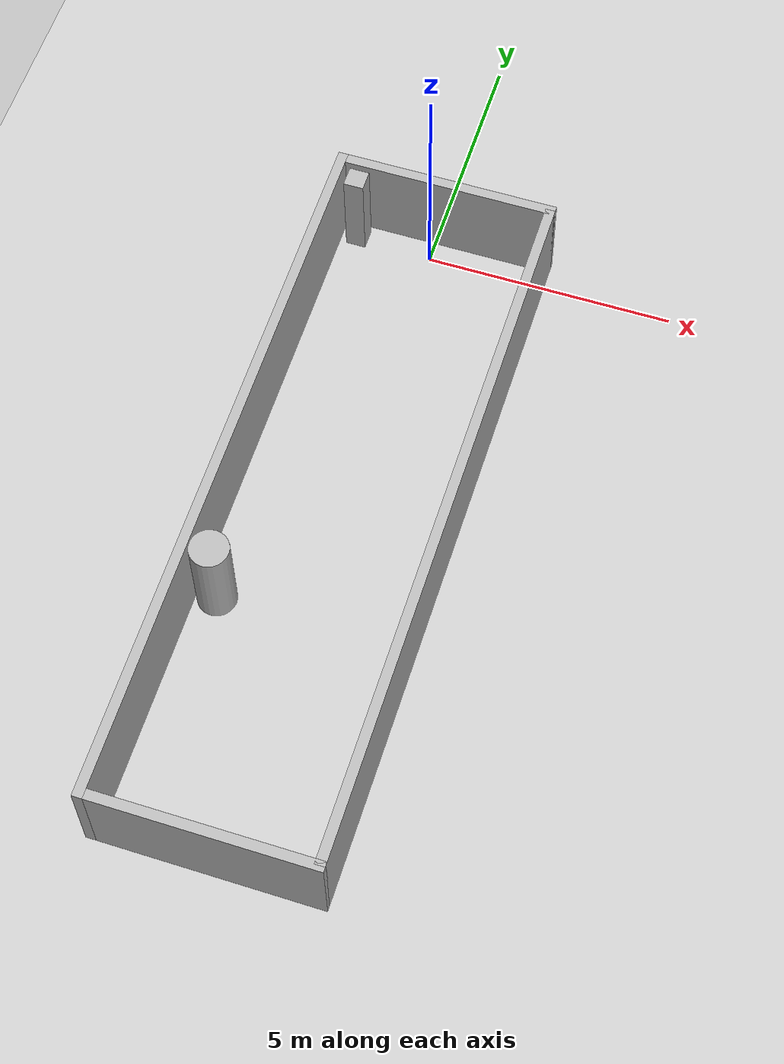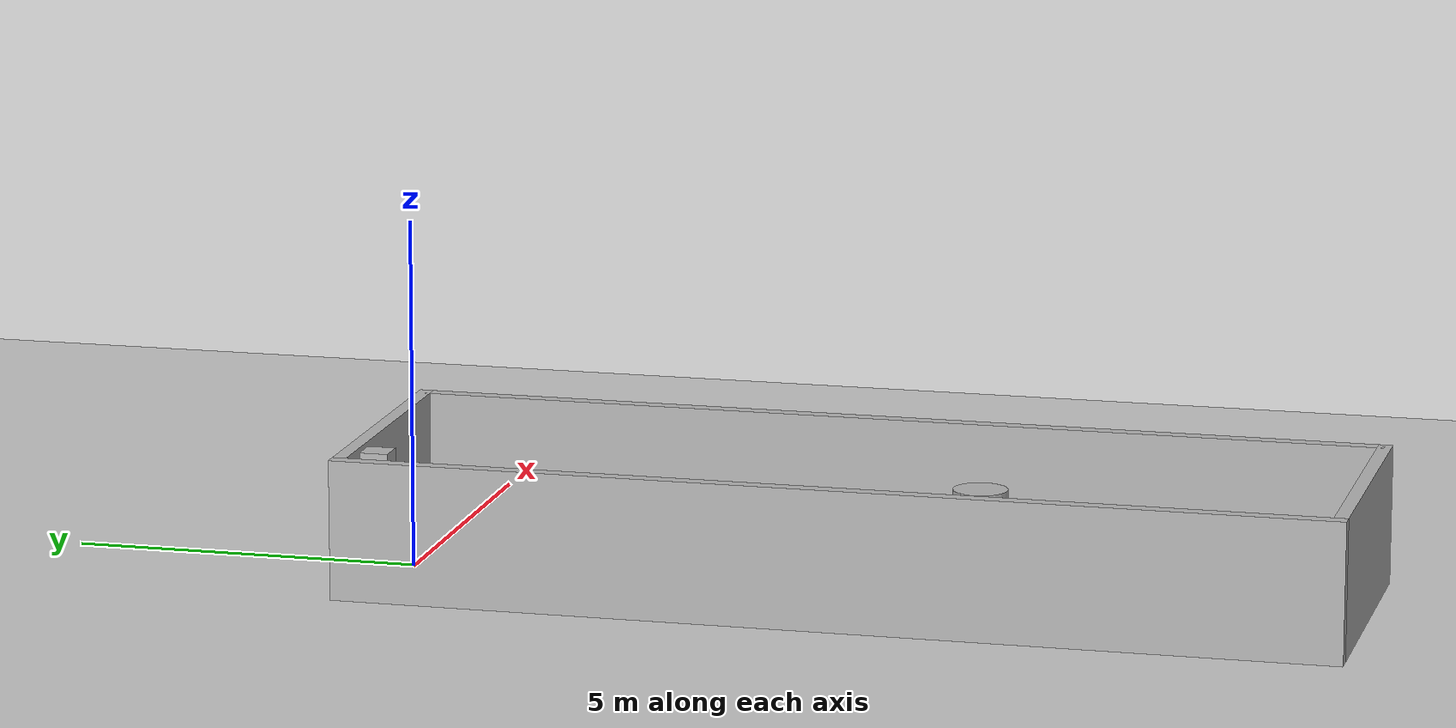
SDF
<sdf version="1.4">
 <world name="narrow_passage">
  <physics type="ode">
   <gravity>0 0 -9.81</gravity>
   <ode>
    <solver><type>quick</type><iters>20</iters><sor>1.0</sor></solver>
    <constraints>
     <cfm>0.0</cfm>
     <erp>0.2</erp>
     <contact_max_correcting_vel>100.0</contact_max_correcting_vel>
     <contact_surface_layer>0.0</contact_surface_layer>
    </constraints>
   </ode>
   <real_time_update_rate>1000</real_time_update_rate>
   <max_step_size>0.001</max_step_size>
  </physics>
  <include><uri>model://sun</uri></include>
  <include><uri>model://ground_plane</uri></include>
  <model name="wall_1_model">
   <pose>-2 -6.5 1 0 0 0</pose>
   <static>true</static>
   <link name="wall_1_body">
    <inertial>
     <mass>1.0</mass>
     <inertia><ixx>1.0</ixx><ixy>0.0</ixy><ixz>0.0</ixz><iyy>1.0</iyy><iyz>0.0</iyz><izz>1.0</izz></inertia>
    </inertial>
    <collision name="collision"><geometry><box><size>0.2 14.2 2</size></box></geometry></collision>
    <visual name="visual"><geometry><box><size>0.2 14.2 2</size></box></geometry></visual>
   </link>
  </model>
  <model name="wall_2_model">
   <pose>2.3 -6.5 1 0 0 0</pose>
   <static>true</static>
   <link name="wall_2_body">
    <inertial>
     <mass>1.0</mass>
     <inertia><ixx>1.0</ixx><ixy>0.0</ixy><ixz>0.0</ixz><iyy>1.0</iyy><iyz>0.0</iyz><izz>1.0</izz></inertia>
    </inertial>
    <collision name="collision"><geometry><box><size>0.2 14 2</size></box></geometry></collision>
    <visual name="visual"><geometry><box><size>0.2 14 2</size></box></geometry></visual>
   </link>
  </model>
  <model name="wall_3_model">
   <pose>0.25 0.5 1 0 0 0</pose>
   <static>true</static>
   <link name="wall_3_body">
    <inertial>
     <mass>1.0</mass>
     <inertia><ixx>1.0</ixx><ixy>0.0</ixy><ixz>0.0</ixz><iyy>1.0</iyy><iyz>0.0</iyz><izz>1.0</izz></inertia>
    </inertial>
    <collision name="collision"><geometry><box><size>4.3 0.2 2</size></box></geometry></collision>
    <visual name="visual"><geometry><box><size>4.3 0.2 2</size></box></geometry></visual>
   </link>
  </model>
  <model name="wall_4_model">
   <pose>0.25 -13.5 1 0 0 0</pose>
   <static>true</static>
   <link name="wall_4_body">
    <inertial>
     <mass>1.0</mass>
     <inertia><ixx>1.0</ixx><ixy>0.0</ixy><ixz>0.0</ixz><iyy>1.0</iyy><iyz>0.0</iyz><izz>1.0</izz></inertia>
    </inertial>
    <collision name="collision"><geometry><box><size>4.3 0.2 2</size></box></geometry></collision>
    <visual name="visual"><geometry><box><size>4.3 0.2 2</size></box></geometry></visual>
   </link>
  </model>
  <model name="box">
   <pose>-1.55 0.05 1.05 0 0 0</pose>
   <static>true</static>
   <link name="box_link">
    <visual name="box_visual"><geometry><box><size>0.4 0.4 2.0</size></box></geometry></visual>
    <collision name="box_collision"><geometry><box><size>0.4 0.4 2.0</size></box></geometry></collision>
   </link>
  </model>
  <model name="column">
   <pose>-1.5 -8.5 1 0 0 0</pose>
   <static>true</static>
   <link name="column_link">
    <visual name="column_visual">
     <geometry><cylinder><radius>0.38</radius><length>2.0</length></cylinder></geometry>
    </visual>
    <collision name="column_collision">
     <geometry><cylinder><radius>0.38</radius><length>2.0</length></cylinder></geometry>
    </collision>
   </link>
  </model>
 </world>
</sdf>
